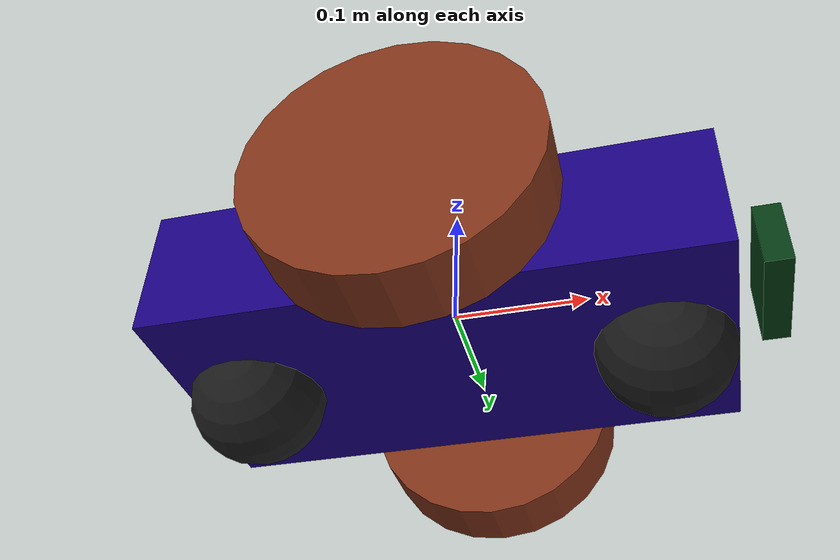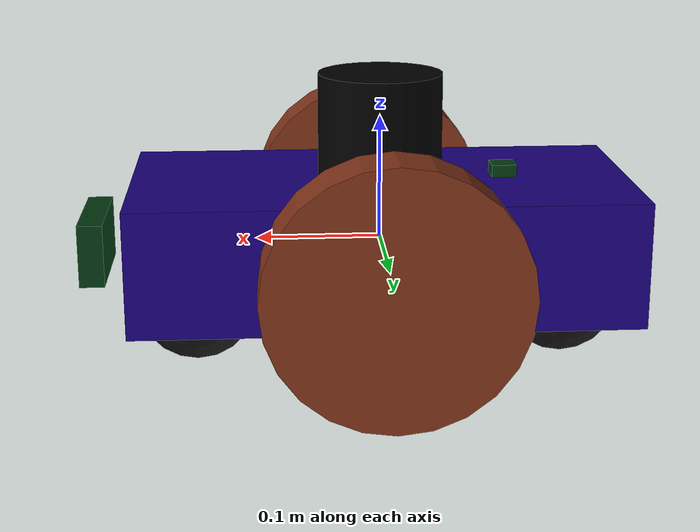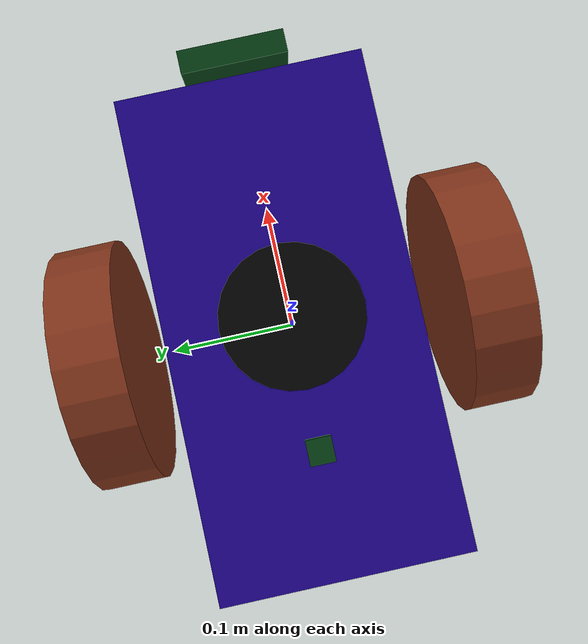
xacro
<robot xmlns:xacro="http://www.ros.org/wiki/xacro" name="dummybot">

    <xacro:include filename="$(find dummybot_description )/urdf/dummybot.gazebo"/>
    <xacro:include filename="$(find dummybot_description )/urdf/wheels.xacro"/>

    <link name="base_link">
        <inertial>
            <origin xyz="0.0 0.0 0.0" rpy="0.0 0.0 0.0"/>
            <mass value="1.0"/>
            <inertia ixx="0.1" ixy="0.0" ixz="0.0" iyy="0.1" iyz="0.0" izz="0.1"/>
        </inertial>
        <visual name="">
            <origin xyz="0.0 0.0 0.0" rpy="0.0 0.0 0.0"/>
            <geometry>
                <box size="0.4 0.2 0.1"/>
            </geometry>
            <material name="">
                <color rgba="0.1 0.0 0.5 1.0"/>
                <texture filename=""/>
            </material>
        </visual>
        <collision>
            <origin xyz="0.0 0.0 0.0" rpy="0.0 0.0 0.0"/>
            <geometry>
                <box size="0.4 0.2 0.1"/>
            </geometry>
        </collision>
    </link>

    <joint name="left_wheel_joint" type="continuous">
        <origin xyz="0.0 0.15 0.0" rpy="0.0 1.5705 1.5705"/>
        <parent link="base_link"/>
        <child link="left_wheel"/>
        <axis xyz="0.0 0.0 1.0"/>
    </joint>

    <joint name="right_wheel_joint" type="continuous">
        <origin xyz="0.0 -0.15 0.0" rpy="0.0 1.5705 1.5705"/>
        <parent link="base_link"/>
        <child link="right_wheel"/>
        <axis xyz="0.0 0.0 1.0"/>
    </joint>

    <link name="front_caster_wheel">
        <inertial>
            <origin xyz="0.0 0.0 0.0" rpy="0.0 0.0 0.0"/>
            <mass value="1.0"/>
            <inertia ixx="0.1" ixy="0.0" ixz="0.0" iyy="0.1" iyz="0.0" izz="0.1"/>
        </inertial>
        <visual name="">
            <origin xyz="0.0 0.0 0.0" rpy="0.0 0.0 0.0"/>
            <geometry>
                <sphere radius="0.0499"/>
            </geometry>
            <material name="">
                <color rgba="0.1 0.1 0.1 1.0"/>
                <texture filename=""/>
            </material>
        </visual>
        <collision>
            <origin xyz="0.0 0.0 0.0" rpy="0.0 0.0 0.0"/>
            <geometry>
            <sphere radius="0.0499"/>
            </geometry>
        </collision>
    </link>

    <joint name="front_caster_wheel_joint" type="fixed">
        <origin xyz="0.15 0.0 -0.05" rpy="0.0 1.5705 1.5705"/>
        <parent link="base_link"/>
        <child link="front_caster_wheel"/>
        <axis xyz="0.0 0.0 0.0"/>
    </joint>

    <link name="back_caster_wheel">
        <inertial>
            <origin xyz="0.0 0.0 0.0" rpy="0.0 0.0 0.0"/>
            <mass value="1.0"/>
            <inertia ixx="0.1" ixy="0.0" ixz="0.0" iyy="0.1" iyz="0.0" izz="0.1"/>
        </inertial>
        <visual name="">
            <origin xyz="0.0 0.0 0.0" rpy="0.0 0.0 0.0"/>
            <geometry>
                <sphere radius="0.0499"/>
            </geometry>
            <material name="">
                <color rgba="0.1 0.1 0.1 1.0"/>
                <texture filename=""/>
            </material>
        </visual>
        <collision>
            <origin xyz="0.0 0.0 0.0" rpy="0.0 0.0 0.0"/>
            <geometry>
            <sphere radius="0.0499"/>
            </geometry>
        </collision>
    </link>

    <joint name="back_caster_wheel_joint" type="fixed">
        <origin xyz="-0.15 0.0 -0.05" rpy="0.0 1.5705 1.5705"/>
        <parent link="base_link"/>
        <child link="back_caster_wheel"/>
        <axis xyz="0.0 0.0 0.0"/>
    </joint>

    <link name="lidar_link">
        <visual>
            <origin xyz="0 0 0" rpy="0 0 0"/>
            <geometry>
                <cylinder radius="0.05" length="0.09"/>
            </geometry>
            <material name="lidar_material">
                <color rgba="0 0 0 1"/>
            </material>
        </visual>
        <collision>
            <origin xyz="0 0 0" rpy="0 0 0"/>
            <geometry>
                <cylinder radius="0.05" length="0.09"/>
            </geometry>
        </collision>
        <inertial>
            <origin xyz="0 0 0" rpy="0 0 0"/>
            <mass value="1"/>
            <inertia ixx="0.3333333333333333" ixy="0" ixz="0" iyy="0.5" iyz="0" izz="0.3333333333333333"/>
        </inertial>
    </link>

        <!-- Lidar Joint -->
    <joint name="lidar_joint" type="fixed">
        <parent link="base_link"/>
        <child link="lidar_link"/>
        <origin xyz="0 0 0.09" rpy="0 0 0"/>
    </joint>

    <!-- Camera Link -->
    <link name="camera_link">
        <visual>
            <origin xyz="0 0 0" rpy="0 0 0"/>
            <geometry>
                <box size="0.02 0.09 0.05"/>
            </geometry>
            <material name="camera_material">
                <color rgba="0.015996293361446288 0.22696587349938613 0.07036009568874305 1"/>
            </material>
        </visual>
        <collision>
            <origin xyz="0 0 0" rpy="0 0 0"/>
            <geometry>
                <box size="0.02 0.09 0.05"/>
            </geometry>
        </collision>
        <inertial>
            <origin xyz="0 0 0" rpy="0 0 0"/>
            <mass value="1"/>
            <inertia ixx="0.16666666666666666" ixy="0" ixz="0" iyy="0.16666666666666666" iyz="0" izz="0.16666666666666666"/>
        </inertial>
    </link>

    <!-- Camera Joint -->
    <joint name="camera_joint" type="fixed">
        <parent link="base_link"/>
        <child link="camera_link"/>
        <origin xyz="0.23 0 0.0" rpy="0 0 0"/>
        <axis xyz="0 1 0"/>

        <limit lower="-1.14" upper="1.14" velocity="3.14" effort="10.0"/>
    </joint>

    <!-- IMU Link -->
    <link name="imu_link">
        <visual>
            <origin xyz="0 0 0" rpy="0 0 0"/>
            <geometry>
                <box size="0.02 0.02 0.02"/>
            </geometry>
            <material name="camera_material">
                <color rgba="0.015996293361446288 0.22696587349938613 0.07036009568874305 1"/>
            </material>
        </visual>
        <collision>
            <origin xyz="0 0 0" rpy="0 0 0"/>
            <geometry>
                <box size="0.02 0.02 0.02"/>
            </geometry>
        </collision>
        <inertial>
            <origin xyz="0 0 0" rpy="0 0 0"/>
            <mass value="1"/>
            <inertia ixx="0.16666666666666666" ixy="0" ixz="0" iyy="0.16666666666666666" iyz="0" izz="0.16666666666666666"/>
        </inertial>
    </link>

    <!-- IMU Joint -->
    <joint name="imu_joint" type="fixed">
        <parent link="base_link"/>
        <child link="imu_link"/>
        <origin xyz="-0.1 0 0.05" rpy="0 0 0"/>
    </joint>

</robot>

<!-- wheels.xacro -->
<robot xmlns:xacro="http://www.ros.org/wiki/xacro" name="dommybot">

    <link name="left_wheel">
        <inertial>
            <origin xyz="0.0 0.0 0.0" rpy="0.0 0.0 0.0"/>
            <mass value="1.0"/>
            <inertia ixx="0.1" ixy="0.0" ixz="0.0" iyy="0.1" iyz="0.0" izz="0.1"/>
        </inertial>
        <visual name="">
            <origin xyz="0.0 0.0 0.0" rpy="0.0 0.0 0.0"/>
            <geometry>
            <cylinder radius="0.1" length="0.05"/>
            </geometry>
            <material name="">
                <color rgba="0.5 0.2 0.1 1.0"/>
                <texture filename=""/>
            </material>
        </visual>
        <collision>
            <origin xyz="0.0 0.0 0.0" rpy="0.0 0.0 0.0"/>
            <geometry>
                <cylinder radius="0.1" length="0.05"/>
            </geometry>
        </collision>
    </link>

    <link name="right_wheel">
        <inertial>
            <origin xyz="0.0 0.0 0.0" rpy="0.0 0.0 0.0"/>
            <mass value="1.0"/>
            <inertia ixx="0.1" ixy="0.0" ixz="0.0" iyy="0.1" iyz="0.0" izz="0.1"/>
        </inertial>
        <visual name="">
            <origin xyz="0.0 0.0 0.0" rpy="0.0 0.0 0.0"/>
            <geometry>
            <cylinder radius="0.1" length="0.05"/>
            </geometry>
            <material name="">
                <color rgba="0.5 0.2 0.1 1.0"/>
                <texture filename=""/>
            </material>
        </visual>
        <collision>
            <origin xyz="0.0 0.0 0.0" rpy="0.0 0.0 0.0"/>
            <geometry>
                <cylinder radius="0.1" length="0.05"/>
            </geometry>
        </collision>
    </link>

</robot>
